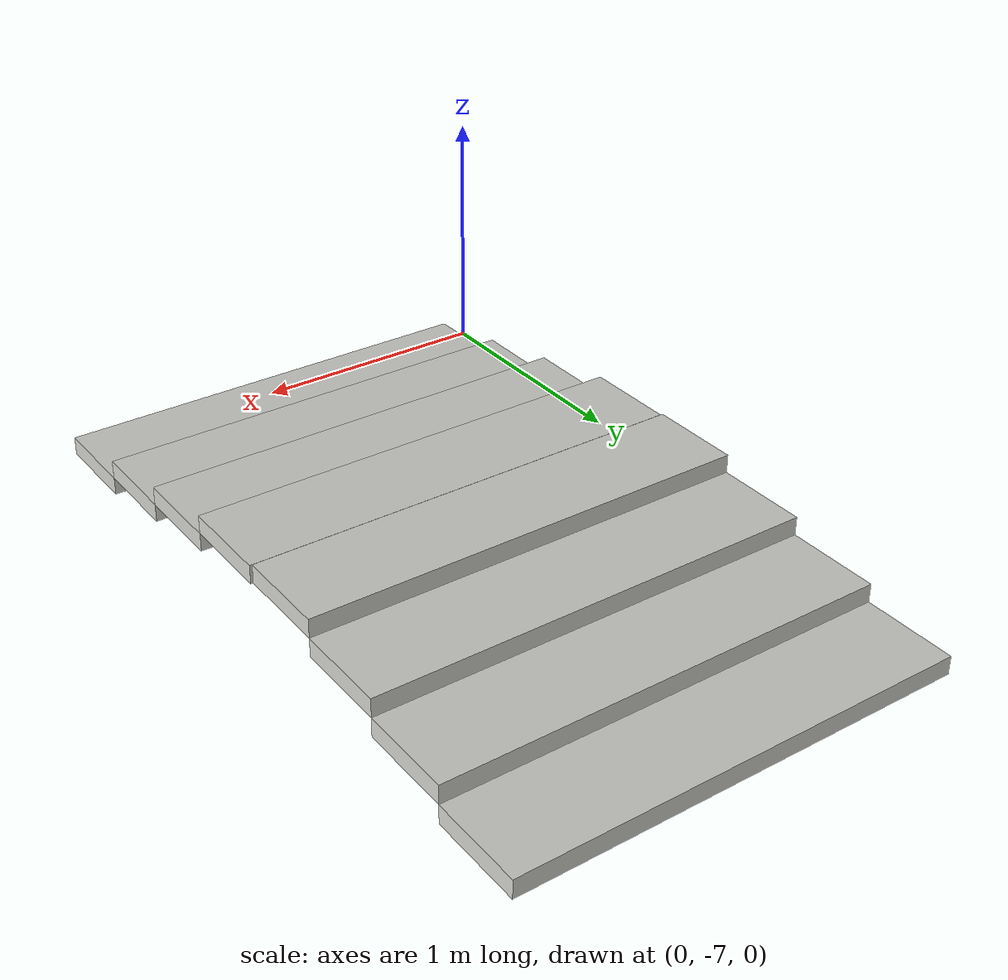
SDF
<?xml version='1.0'?>
<sdf version='1.6'>
  <model name='VC_Stairs'>
    <pose frame=''>0.993791 -5.50949 0 0 -0 0</pose>
    <link name='Stairs_1'>
      <visual name='Stairs_1_Visual_0'>
        <pose frame=''>-0.004791 1.31299 0.0375 0 -0 0</pose>
        <geometry>
          <box>
            <size>1.8 0.375 0.075</size>
          </box>
        </geometry>
        <material>
          <script>
            <uri>file://media/materials/scripts/gazebo.material</uri>
            <name>Gazebo/CeilingTiled</name>
          </script>
          <ambient>1 0.764706 0.305882 1</ambient>
        </material>
        <meta>
          <layer>0</layer>
        </meta>
      </visual>
      <collision name='Stairs_1_Collision_0'>
        <geometry>
          <box>
            <size>1.8 0.375 0.075</size>
          </box>
        </geometry>
        <pose frame=''>-0.004791 1.31299 0.0375 0 -0 0</pose>
      </collision>
      <visual name='Stairs_1_Visual_1'>
        <pose frame=''>-0.004791 0.937991 0.1125 0 -0 0</pose>
        <geometry>
          <box>
            <size>1.8 0.375 0.075</size>
          </box>
        </geometry>
        <material>
          <script>
            <uri>file://media/materials/scripts/gazebo.material</uri>
            <name>Gazebo/CeilingTiled</name>
          </script>
          <ambient>1 0.764706 0.305882 1</ambient>
        </material>
        <meta>
          <layer>0</layer>
        </meta>
      </visual>
      <collision name='Stairs_1_Collision_1'>
        <geometry>
          <box>
            <size>1.8 0.375 0.075</size>
          </box>
        </geometry>
        <pose frame=''>-0.004791 0.937991 0.1125 0 -0 0</pose>
      </collision>
      <visual name='Stairs_1_Visual_2'>
        <pose frame=''>-0.004791 0.562991 0.1875 0 -0 0</pose>
        <geometry>
          <box>
            <size>1.8 0.375 0.075</size>
          </box>
        </geometry>
        <material>
          <script>
            <uri>file://media/materials/scripts/gazebo.material</uri>
            <name>Gazebo/CeilingTiled</name>
          </script>
          <ambient>1 0.764706 0.305882 1</ambient>
        </material>
        <meta>
          <layer>0</layer>
        </meta>
      </visual>
      <collision name='Stairs_1_Collision_2'>
        <geometry>
          <box>
            <size>1.8 0.375 0.075</size>
          </box>
        </geometry>
        <pose frame=''>-0.004791 0.562991 0.1875 0 -0 0</pose>
      </collision>
      <visual name='Stairs_1_Visual_3'>
        <pose frame=''>-0.004791 0.187991 0.2625 0 -0 0</pose>
        <geometry>
          <box>
            <size>1.8 0.375 0.075</size>
          </box>
        </geometry>
        <material>
          <script>
            <uri>file://media/materials/scripts/gazebo.material</uri>
            <name>Gazebo/CeilingTiled</name>
          </script>
          <ambient>1 0.764706 0.305882 1</ambient>
        </material>
        <meta>
          <layer>0</layer>
        </meta>
      </visual>
      <collision name='Stairs_1_Collision_3'>
        <geometry>
          <box>
            <size>1.8 0.375 0.075</size>
          </box>
        </geometry>
        <pose frame=''>-0.004791 0.187991 0.2625 0 -0 0</pose>
      </collision>
    </link>
    <link name='Stairs_3'>
      <visual name='Stairs_3_Visual_0'>
        <pose frame=''>0.004791 -1.31299 0.0375 0 -0 -3.14159</pose>
        <geometry>
          <box>
            <size>1.8 0.375 0.075</size>
          </box>
        </geometry>
        <material>
          <script>
            <uri>file://media/materials/scripts/gazebo.material</uri>
            <name>Gazebo/CeilingTiled</name>
          </script>
          <ambient>0.921569 0.807843 0.615686 1</ambient>
        </material>
        <meta>
          <layer>0</layer>
        </meta>
      </visual>
      <collision name='Stairs_3_Collision_0'>
        <geometry>
          <box>
            <size>1.8 0.375 0.075</size>
          </box>
        </geometry>
        <pose frame=''>0.004791 -1.31299 0.0375 0 -0 -3.14159</pose>
      </collision>
      <visual name='Stairs_3_Visual_1'>
        <pose frame=''>0.004791 -0.937991 0.1125 0 -0 -3.14159</pose>
        <geometry>
          <box>
            <size>1.8 0.375 0.075</size>
          </box>
        </geometry>
        <material>
          <script>
            <uri>file://media/materials/scripts/gazebo.material</uri>
            <name>Gazebo/CeilingTiled</name>
          </script>
          <ambient>0.921569 0.807843 0.615686 1</ambient>
        </material>
        <meta>
          <layer>0</layer>
        </meta>
      </visual>
      <collision name='Stairs_3_Collision_1'>
        <geometry>
          <box>
            <size>1.8 0.375 0.075</size>
          </box>
        </geometry>
        <pose frame=''>0.004791 -0.937991 0.1125 0 -0 -3.14159</pose>
      </collision>
      <visual name='Stairs_3_Visual_2'>
        <pose frame=''>0.004791 -0.562991 0.1875 0 -0 -3.14159</pose>
        <geometry>
          <box>
            <size>1.8 0.375 0.075</size>
          </box>
        </geometry>
        <material>
          <script>
            <uri>file://media/materials/scripts/gazebo.material</uri>
            <name>Gazebo/CeilingTiled</name>
          </script>
          <ambient>0.921569 0.807843 0.615686 1</ambient>
        </material>
        <meta>
          <layer>0</layer>
        </meta>
      </visual>
      <collision name='Stairs_3_Collision_2'>
        <geometry>
          <box>
            <size>1.8 0.375 0.075</size>
          </box>
        </geometry>
        <pose frame=''>0.004791 -0.562991 0.1875 0 -0 -3.14159</pose>
      </collision>
      <visual name='Stairs_3_Visual_3'>
        <pose frame=''>0.004791 -0.187991 0.2625 0 -0 -3.14159</pose>
        <geometry>
          <box>
            <size>1.8 0.375 0.075</size>
          </box>
        </geometry>
        <material>
          <script>
            <uri>file://media/materials/scripts/gazebo.material</uri>
            <name>Gazebo/CeilingTiled</name>
          </script>
          <ambient>0.921569 0.807843 0.615686 1</ambient>
        </material>
        <meta>
          <layer>0</layer>
        </meta>
      </visual>
      <collision name='Stairs_3_Collision_3'>
        <geometry>
          <box>
            <size>1.8 0.375 0.075</size>
          </box>
        </geometry>
        <pose frame=''>0.004791 -0.187991 0.2625 0 -0 -3.14159</pose>
      </collision>
    </link>
    <static>1</static>
  </model>
</sdf>
